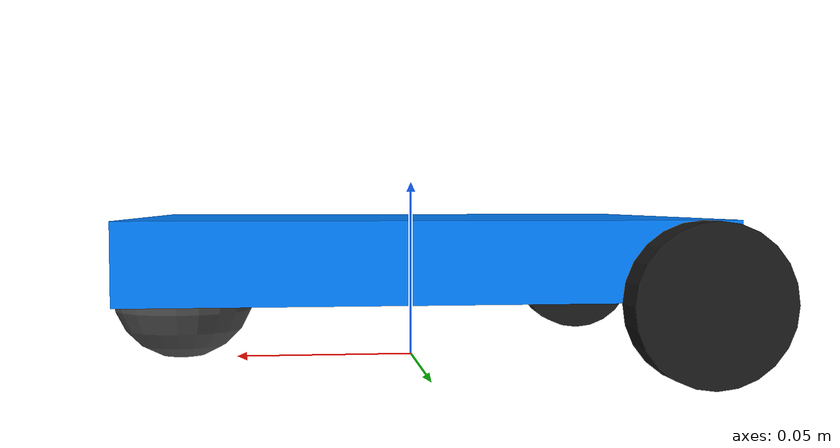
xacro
<?xml version="1.0"?>
<robot xmlns:xacro="http://ros.org/wiki/xacro" name="mobile_cart">
  <!-- Cart dimensions -->
  <xacro:property name="chassis_length" value="0.15" />  <!-- 15cm length -->
  <xacro:property name="chassis_width" value="0.12" />   <!-- 12cm width -->
  <xacro:property name="chassis_height" value="0.02" />  <!-- 2cm height -->
  <xacro:property name="chassis_mass" value="0.5" />     <!-- 500g chassis -->

  <!-- Drive wheel properties -->
  <xacro:property name="wheel_radius" value="0.02" />    <!-- 2cm wheel radius -->
  <xacro:property name="wheel_width" value="0.01" />     <!-- 1cm wheel width -->
  <xacro:property name="wheel_mass" value="0.1" />       <!-- 100g per wheel -->

  <!-- Wheel positions -->
  <xacro:property name="wheel_offset_x" value="${-chassis_length/2 + 0.01}" />  <!-- x offset from center (rear) -->
  <xacro:property name="wheel_offset_y" value="${chassis_width/2 + wheel_width/2}" />  <!-- y offset from center -->

  <!-- Caster wheel properties - INCREASED SIZE -->
  <xacro:property name="caster_radius" value="0.02" />   <!-- 2cm caster radius (doubled from original) -->
  <xacro:property name="caster_mass" value="0.1" />      <!-- 100g for caster (increased for larger size) -->
  <xacro:property name="caster_offset_x" value="${chassis_length/2 - 0.01}" /> <!-- Front center position -->

  <!-- Define robot_name property -->
  <xacro:arg name='robot_name' default='mobile_cart'/>
  <xacro:property name="robot_name" value="$(arg robot_name)"/>

  <!-- Base Link (Chassis) -->
  <link name="${robot_name}_base_link">
    <visual>
      <origin xyz="0 0 ${wheel_radius + chassis_height/2}" rpy="0 0 0"/>
      <geometry>
        <box size="${chassis_length} ${chassis_width} ${chassis_height}"/>
      </geometry>
      <material name="blue">
        <color rgba="0 0.5 1 1"/>
      </material>
    </visual>

    <collision>
      <origin xyz="0 0 ${wheel_radius + chassis_height/2}" rpy="0 0 0"/>
      <geometry>
        <box size="${chassis_length} ${chassis_width} ${chassis_height}"/>
      </geometry>
    </collision>

    <inertial>
      <origin xyz="0 0 ${wheel_radius + chassis_height/2}" rpy="0 0 0"/>
      <mass value="${chassis_mass}"/>
      <inertia
        ixx="${chassis_mass * (chassis_width*chassis_width + chassis_height*chassis_height) / 12.0}"
        ixy="0.0" ixz="0.0"
        iyy="${chassis_mass * (chassis_length*chassis_length + chassis_height*chassis_height) / 12.0}"
        iyz="0.0"
        izz="${chassis_mass * (chassis_length*chassis_length + chassis_width*chassis_width) / 12.0}"/>
    </inertial>
  </link>

  <!-- Gazebo color for chassis -->
  <gazebo reference="${robot_name}_base_link">
    <material>Gazebo/Blue</material>
  </gazebo>

  <!-- Drive Wheel Macro -->
  <xacro:macro name="wheel" params="prefix x y">
    <link name="${prefix}_wheel">
      <visual>
        <origin xyz="0 0 0" rpy="${pi/2} 0 0"/>
        <geometry>
          <cylinder length="${wheel_width}" radius="${wheel_radius}"/>
        </geometry>
        <material name="black">
          <color rgba="0.1 0.1 0.1 1"/>
        </material>
      </visual>

      <collision>
        <origin xyz="0 0 0" rpy="${pi/2} 0 0"/>
        <geometry>
          <cylinder length="${wheel_width}" radius="${wheel_radius}"/>
        </geometry>
      </collision>

      <inertial>
        <origin xyz="0 0 0" rpy="${pi/2} 0 0"/>
        <mass value="${wheel_mass}"/>
        <inertia
          ixx="${wheel_mass * (3*wheel_radius*wheel_radius + wheel_width*wheel_width) / 12.0}"
          ixy="0.0" ixz="0.0"
          iyy="${wheel_mass * (3*wheel_radius*wheel_radius + wheel_width*wheel_width) / 12.0}"
          iyz="0.0"
          izz="${wheel_mass * wheel_radius*wheel_radius / 2.0}"/>
      </inertial>
    </link>

    <joint name="${prefix}_wheel_joint" type="continuous">
      <parent link="${robot_name}_base_link"/>
      <child link="${prefix}_wheel"/>
      <origin xyz="${x} ${y} ${wheel_radius}" rpy="0 0 0"/>
      <axis xyz="0 1 0"/>
      <dynamics damping="0.1" friction="0.1"/>
    </joint>

    <!-- Gazebo specifics for wheel -->
    <gazebo reference="${prefix}_wheel">
      <material>Gazebo/Black</material>
      <mu1>2.0</mu1>
      <mu2>2.0</mu2>
      <kp>1000000.0</kp>
      <kd>100.0</kd>
      <minDepth>0.001</minDepth>
      <maxVel>1.0</maxVel>
    </gazebo>
  </xacro:macro>

  <!-- Create rear drive wheels -->
  <xacro:wheel prefix="rear_right" x="${wheel_offset_x}" y="-${wheel_offset_y}"/>
  <xacro:wheel prefix="rear_left" x="${wheel_offset_x}" y="${wheel_offset_y}"/>

  <!-- Front Caster Wheel - LARGER SIZE -->
  <link name="caster_wheel">
    <visual>
      <origin xyz="0 0 0" rpy="0 0 0"/>
      <geometry>
        <sphere radius="${caster_radius}"/>
      </geometry>
      <material name="dark_grey">
        <color rgba="0.3 0.3 0.3 1"/>
      </material>
    </visual>

    <collision>
      <origin xyz="0 0 0" rpy="0 0 0"/>
      <geometry>
        <sphere radius="${caster_radius}"/>
      </geometry>
    </collision>

    <inertial>
      <mass value="${caster_mass}"/>
      <origin xyz="0 0 0" rpy="0 0 0"/>
      <inertia
        ixx="${2.0*caster_mass*caster_radius*caster_radius/5.0}"
        ixy="0.0"
        ixz="0.0"
        iyy="${2.0*caster_mass*caster_radius*caster_radius/5.0}"
        iyz="0.0"
        izz="${2.0*caster_mass*caster_radius*caster_radius/5.0}"/>
    </inertial>
  </link>

  <!-- Caster Joint - Fixed joint to the chassis -->
  <joint name="caster_wheel_joint" type="fixed">
    <parent link="${robot_name}_base_link"/>
    <child link="caster_wheel"/>
    <origin xyz="${caster_offset_x} 0 ${caster_radius}" rpy="0 0 0"/>
  </joint>

  <!-- Gazebo specifics for caster -->
  <gazebo reference="caster_wheel">
    <material>Gazebo/Gray</material>
    <mu1>0.1</mu1>
    <mu2>0.1</mu2>
    <kp>1000000.0</kp>
    <kd>100.0</kd>
    <minDepth>0.001</minDepth>
    <maxVel>1.0</maxVel>
    <selfCollide>false</selfCollide>
  </gazebo>

  <!-- Gazebo plugin for differential drive -->
  <gazebo>
    <plugin name="differential_drive_controller" filename="libgazebo_ros_diff_drive.so">
      <update_rate>50</update_rate>
      <!-- Use rear wheels for differential drive -->
      <left_joint>rear_left_wheel_joint</left_joint>
      <right_joint>rear_right_wheel_joint</right_joint>
      <wheel_separation>${chassis_width + 2*wheel_width}</wheel_separation>
      <wheel_diameter>${2 * wheel_radius}</wheel_diameter>
      <!-- Increase power to overcome initial friction -->
      <max_wheel_acceleration>10.0</max_wheel_acceleration>
      <max_wheel_torque>100</max_wheel_torque>
      <odometry_frame>odom</odometry_frame>
      <robot_base_frame>${robot_name}_base_link</robot_base_frame>
      <publish_odom>true</publish_odom>
      <publish_odom_tf>true</publish_odom_tf>
      <publish_wheel_tf>false</publish_wheel_tf>
      <commandTopic>cmd_vel</commandTopic>
      <odometryTopic>odom</odometryTopic>
      <odometryFrame>odom</odometryFrame>
      <robotBaseFrame>${robot_name}_base_link</robotBaseFrame>
      <ros>
        <namespace>/mobile_cart</namespace>
      </ros>
      <legacyMode>false</legacyMode>
      <wheelAcceleration>5.0</wheelAcceleration>
    </plugin>
  </gazebo>
</robot>
